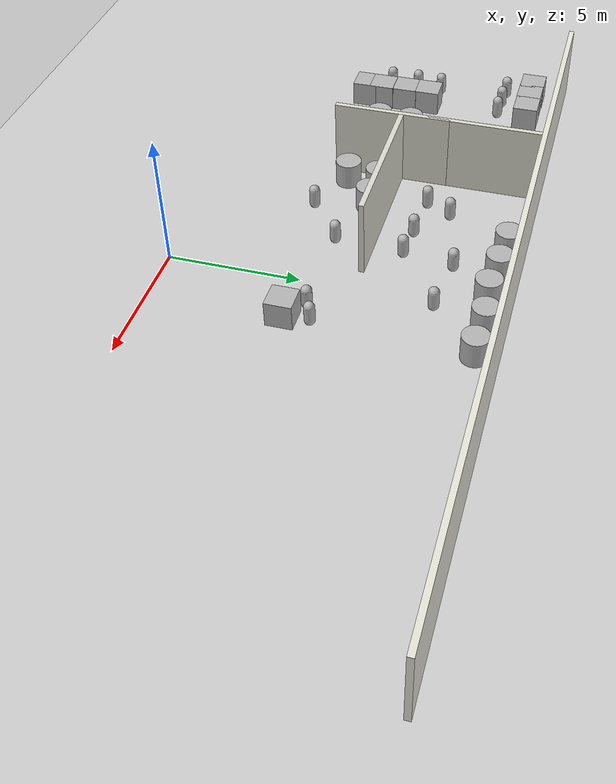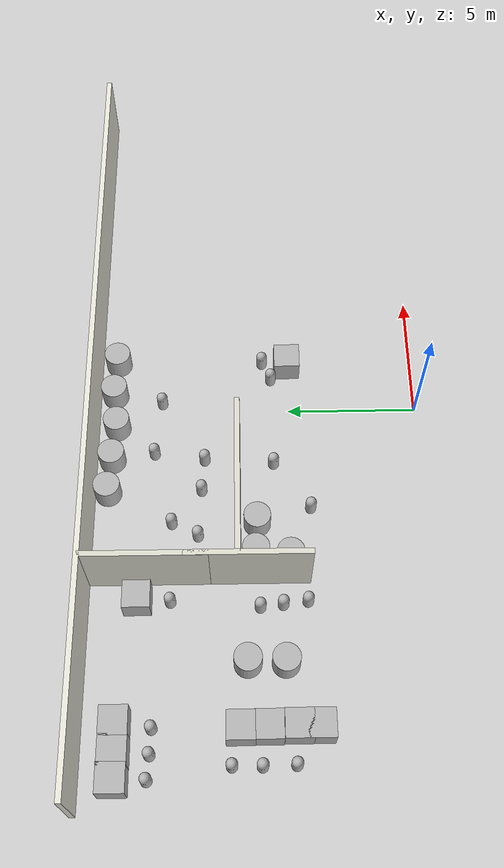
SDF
<sdf version="1.10">
 <world name="default">
  <model name="ground_plane">
   <static>true</static>
   <link name="link">
    <collision name="collision">
     <geometry><plane><normal>0 0 1</normal><size>100 100</size></plane></geometry>
    </collision>
    <visual name="visual">
     <geometry><plane><normal>0 0 1</normal><size>100 100</size></plane></geometry>
     <material>
      <ambient>0.800000012 0.800000012 0.800000012 1</ambient>
      <diffuse>0.800000012 0.800000012 0.800000012 1</diffuse>
      <specular>0.100000001 0.100000001 0.100000001 1</specular>
     </material>
    </visual>
    <inertial>
     <mass>1</mass>
     <inertia><ixx>1</ixx><ixy>0</ixy><ixz>0</ixz><iyy>1</iyy><iyz>0</iyz><izz>1</izz></inertia>
    </inertial>
   </link>
  </model>
  <model name="north_wall">
   <static>true</static>
   <pose>0 12.5 1.5 0 0 0</pose>
   <link name="link">
    <collision name="collision"><geometry><box><size>30 0.20000000000000001 3</size></box></geometry></collision>
    <visual name="visual">
     <geometry><box><size>30 0.20000000000000001 3</size></box></geometry>
     <material>
      <ambient>0.899999976 0.899999976 0.850000024 1</ambient>
      <diffuse>0.899999976 0.899999976 0.850000024 1</diffuse>
     </material>
    </visual>
    <inertial>
     <mass>1</mass>
     <inertia><ixx>1</ixx><ixy>0</ixy><ixz>0</ixz><iyy>1</iyy><iyz>0</iyz><izz>1</izz></inertia>
    </inertial>
   </link>
  </model>
  <model name="v_wall_m7_n2">
   <static>true</static>
   <pose>-7 10.25 1.5 0 0 0</pose>
   <link name="link">
    <collision name="collision"><geometry><box><size>0.20000000000000001 4.5 3</size></box></geometry></collision>
    <visual name="visual">
     <geometry><box><size>0.20000000000000001 4.5 3</size></box></geometry>
     <material>
      <ambient>0.850000024 0.850000024 0.800000012 1</ambient>
      <diffuse>0.850000024 0.850000024 0.800000012 1</diffuse>
     </material>
    </visual>
    <inertial>
     <mass>1</mass>
     <inertia><ixx>1</ixx><ixy>0</ixy><ixz>0</ixz><iyy>1</iyy><iyz>0</iyz><izz>1</izz></inertia>
    </inertial>
   </link>
  </model>
  <model name="h_wall_p7_seg1">
   <static>true</static>
   <pose>-4 7 1.5 0 0 0</pose>
   <link name="link">
    <collision name="collision"><geometry><box><size>6 0.20000000000000001 3</size></box></geometry></collision>
    <visual name="visual">
     <geometry><box><size>6 0.20000000000000001 3</size></box></geometry>
     <material>
      <ambient>0.850000024 0.850000024 0.800000012 1</ambient>
      <diffuse>0.850000024 0.850000024 0.800000012 1</diffuse>
     </material>
    </visual>
    <inertial>
     <mass>1</mass>
     <inertia><ixx>1</ixx><ixy>0</ixy><ixz>0</ixz><iyy>1</iyy><iyz>0</iyz><izz>1</izz></inertia>
    </inertial>
   </link>
  </model>
  <model name="v_wall_m7_n1_1">
   <static>true</static>
   <pose>-6.9964118067866385 6.624255076067092 1.5 0 0 0</pose>
   <link name="link">
    <collision name="collision"><geometry><box><size>0.20000000000000001 4.5 3</size></box></geometry></collision>
    <visual name="visual">
     <geometry><box><size>0.20000000000000001 4.5 3</size></box></geometry>
     <material>
      <ambient>0.850000024 0.850000024 0.800000012 1</ambient>
      <diffuse>0.850000024 0.850000024 0.800000012 1</diffuse>
     </material>
    </visual>
    <inertial>
     <mass>1</mass>
     <inertia><ixx>1</ixx><ixy>0</ixy><ixz>0</ixz><iyy>1</iyy><iyz>0</iyz><izz>1</izz></inertia>
    </inertial>
   </link>
  </model>
  <model name="box_5">
   <static>true</static>
   <pose>-13.920407534209415 11.225791648540341 0.5 0 0 0</pose>
   <link name="box_link">
    <inertial>
     <inertia><ixx>0.16666</ixx><ixy>0</ixy><ixz>0</ixz><iyy>0.16666</iyy><iyz>0</iyz><izz>0.16666</izz></inertia>
     <mass>1</mass>
    </inertial>
    <collision name="box_collision"><geometry><box><size>1 1 1</size></box></geometry></collision>
    <visual name="box_visual">
     <geometry><box><size>1 1 1</size></box></geometry>
     <material>
      <ambient>0.300000012 0.300000012 0.300000012 1</ambient>
      <diffuse>0.699999988 0.699999988 0.699999988 1</diffuse>
      <specular>1 1 1 1</specular>
     </material>
    </visual>
   </link>
   <static>false</static>
  </model>
  <model name="box_3_3">
   <static>true</static>
   <pose>-13.028856811321434 11.213962207562767 0.5 0 0 0</pose>
   <link name="box_link">
    <inertial>
     <inertia><ixx>0.16666</ixx><ixy>0</ixy><ixz>0</ixz><iyy>0.16666</iyy><iyz>0</iyz><izz>0.16666</izz></inertia>
     <mass>1</mass>
    </inertial>
    <collision name="box_collision"><geometry><box><size>1 1 1</size></box></geometry></collision>
    <visual name="box_visual">
     <geometry><box><size>1 1 1</size></box></geometry>
     <material>
      <ambient>0.300000012 0.300000012 0.300000012 1</ambient>
      <diffuse>0.699999988 0.699999988 0.699999988 1</diffuse>
      <specular>1 1 1 1</specular>
     </material>
    </visual>
   </link>
   <static>false</static>
  </model>
  <model name="box_3_4">
   <static>true</static>
   <pose>-12.087991972096594 11.219910795643306 0.5 0 0 0</pose>
   <link name="box_link">
    <inertial>
     <inertia><ixx>0.16666</ixx><ixy>0</ixy><ixz>0</ixz><iyy>0.16666</iyy><iyz>0</iyz><izz>0.16666</izz></inertia>
     <mass>1</mass>
    </inertial>
    <collision name="box_collision"><geometry><box><size>1 1 1</size></box></geometry></collision>
    <visual name="box_visual">
     <geometry><box><size>1 1 1</size></box></geometry>
     <material>
      <ambient>0.300000012 0.300000012 0.300000012 1</ambient>
      <diffuse>0.699999988 0.699999988 0.699999988 1</diffuse>
      <specular>1 1 1 1</specular>
     </material>
    </visual>
   </link>
   <static>false</static>
  </model>
  <model name="capsule_10">
   <static>true</static>
   <pose>-13.935018340891402 10.097251503520702 0.5 0 0 0</pose>
   <link name="capsule_link">
    <inertial>
     <inertia>
      <ixx>0.074153999999999998</ixx>
      <ixy>0</ixy>
      <ixz>0</ixz>
      <iyy>0.074153999999999998</iyy>
      <iyz>0</iyz>
      <izz>0.018769000000000001</izz>
     </inertia>
     <mass>1</mass>
    </inertial>
    <collision name="capsule_collision">
     <geometry>
      <capsule><radius>0.20000000000000001</radius><length>0.59999999999999998</length></capsule>
     </geometry>
    </collision>
    <visual name="capsule_visual">
     <geometry>
      <capsule><radius>0.20000000000000001</radius><length>0.59999999999999998</length></capsule>
     </geometry>
     <material>
      <ambient>0.300000012 0.300000012 0.300000012 1</ambient>
      <diffuse>0.699999988 0.699999988 0.699999988 1</diffuse>
      <specular>1 1 1 1</specular>
     </material>
    </visual>
   </link>
   <static>false</static>
  </model>
  <model name="capsule_11">
   <static>true</static>
   <pose>-13.119221214522979 10.023039743192648 0.5 0 0 0</pose>
   <link name="capsule_link">
    <inertial>
     <inertia>
      <ixx>0.074153999999999998</ixx>
      <ixy>0</ixy>
      <ixz>0</ixz>
      <iyy>0.074153999999999998</iyy>
      <iyz>0</iyz>
      <izz>0.018769000000000001</izz>
     </inertia>
     <mass>1</mass>
    </inertial>
    <collision name="capsule_collision">
     <geometry>
      <capsule><radius>0.20000000000000001</radius><length>0.59999999999999998</length></capsule>
     </geometry>
    </collision>
    <visual name="capsule_visual">
     <geometry>
      <capsule><radius>0.20000000000000001</radius><length>0.59999999999999998</length></capsule>
     </geometry>
     <material>
      <ambient>0.300000012 0.300000012 0.300000012 1</ambient>
      <diffuse>0.699999988 0.699999988 0.699999988 1</diffuse>
      <specular>1 1 1 1</specular>
     </material>
    </visual>
   </link>
   <static>false</static>
  </model>
  <model name="capsule_12">
   <static>true</static>
   <pose>-12.262949525757783 9.9820059924370597 0.5 0 0 0</pose>
   <link name="capsule_link">
    <inertial>
     <inertia>
      <ixx>0.074153999999999998</ixx>
      <ixy>0</ixy>
      <ixz>0</ixz>
      <iyy>0.074153999999999998</iyy>
      <iyz>0</iyz>
      <izz>0.018769000000000001</izz>
     </inertia>
     <mass>1</mass>
    </inertial>
    <collision name="capsule_collision">
     <geometry>
      <capsule><radius>0.20000000000000001</radius><length>0.59999999999999998</length></capsule>
     </geometry>
    </collision>
    <visual name="capsule_visual">
     <geometry>
      <capsule><radius>0.20000000000000001</radius><length>0.59999999999999998</length></capsule>
     </geometry>
     <material>
      <ambient>0.300000012 0.300000012 0.300000012 1</ambient>
      <diffuse>0.699999988 0.699999988 0.699999988 1</diffuse>
      <specular>1 1 1 1</specular>
     </material>
    </visual>
   </link>
   <static>false</static>
  </model>
  <model name="box_6">
   <static>true</static>
   <pose>-7.7401459845808294 10.622118878185075 0.5 0 0 0</pose>
   <link name="box_link">
    <inertial>
     <inertia><ixx>0.16666</ixx><ixy>0</ixy><ixz>0</ixz><iyy>0.16666</iyy><iyz>0</iyz><izz>0.16666</izz></inertia>
     <mass>1</mass>
    </inertial>
    <collision name="box_collision"><geometry><box><size>1 1 1</size></box></geometry></collision>
    <visual name="box_visual">
     <geometry><box><size>1 1 1</size></box></geometry>
     <material>
      <ambient>0.300000012 0.300000012 0.300000012 1</ambient>
      <diffuse>0.699999988 0.699999988 0.699999988 1</diffuse>
      <specular>1 1 1 1</specular>
     </material>
    </visual>
   </link>
   <static>false</static>
  </model>
  <model name="capsule_13">
   <static>true</static>
   <pose>-7.8480170268126166 9.4386615842912711 0.5 0 0 0</pose>
   <link name="capsule_link">
    <inertial>
     <inertia>
      <ixx>0.074153999999999998</ixx>
      <ixy>0</ixy>
      <ixz>0</ixz>
      <iyy>0.074153999999999998</iyy>
      <iyz>0</iyz>
      <izz>0.018769000000000001</izz>
     </inertia>
     <mass>1</mass>
    </inertial>
    <collision name="capsule_collision">
     <geometry>
      <capsule><radius>0.20000000000000001</radius><length>0.59999999999999998</length></capsule>
     </geometry>
    </collision>
    <visual name="capsule_visual">
     <geometry>
      <capsule><radius>0.20000000000000001</radius><length>0.59999999999999998</length></capsule>
     </geometry>
     <material>
      <ambient>0.300000012 0.300000012 0.300000012 1</ambient>
      <diffuse>0.699999988 0.699999988 0.699999988 1</diffuse>
      <specular>1 1 1 1</specular>
     </material>
    </visual>
   </link>
   <static>false</static>
  </model>
  <model name="box_8">
   <static>true</static>
   <pose>-12.265241237122602 4.9849532051126628 0.5 0 0 0</pose>
   <link name="box_link">
    <inertial>
     <inertia><ixx>0.16666</ixx><ixy>0</ixy><ixz>0</ixz><iyy>0.16666</iyy><iyz>0</iyz><izz>0.16666</izz></inertia>
     <mass>1</mass>
    </inertial>
    <collision name="box_collision"><geometry><box><size>1 1 1</size></box></geometry></collision>
    <visual name="box_visual">
     <geometry><box><size>1 1 1</size></box></geometry>
     <material>
      <ambient>0.300000012 0.300000012 0.300000012 1</ambient>
      <diffuse>0.699999988 0.699999988 0.699999988 1</diffuse>
      <specular>1 1 1 1</specular>
     </material>
    </visual>
   </link>
   <static>false</static>
  </model>
  <model name="box_9">
   <static>true</static>
   <pose>-12.28743931177155 5.9949288039292803 0.5 0 0 0</pose>
   <link name="box_link">
    <inertial>
     <inertia><ixx>0.16666</ixx><ixy>0</ixy><ixz>0</ixz><iyy>0.16666</iyy><iyz>0</iyz><izz>0.16666</izz></inertia>
     <mass>1</mass>
    </inertial>
    <collision name="box_collision"><geometry><box><size>1 1 1</size></box></geometry></collision>
    <visual name="box_visual">
     <geometry><box><size>1 1 1</size></box></geometry>
     <material>
      <ambient>0.300000012 0.300000012 0.300000012 1</ambient>
      <diffuse>0.699999988 0.699999988 0.699999988 1</diffuse>
      <specular>1 1 1 1</specular>
     </material>
    </visual>
   </link>
   <static>false</static>
  </model>
  <model name="box_10">
   <static>true</static>
   <pose>-12.301193252397621 6.9635277249526712 0.5 0 0 0</pose>
   <link name="box_link">
    <inertial>
     <inertia><ixx>0.16666</ixx><ixy>0</ixy><ixz>0</ixz><iyy>0.16666</iyy><iyz>0</iyz><izz>0.16666</izz></inertia>
     <mass>1</mass>
    </inertial>
    <collision name="box_collision"><geometry><box><size>1 1 1</size></box></geometry></collision>
    <visual name="box_visual">
     <geometry><box><size>1 1 1</size></box></geometry>
     <material>
      <ambient>0.300000012 0.300000012 0.300000012 1</ambient>
      <diffuse>0.699999988 0.699999988 0.699999988 1</diffuse>
      <specular>1 1 1 1</specular>
     </material>
    </visual>
   </link>
   <static>false</static>
  </model>
  <model name="box_11">
   <static>true</static>
   <pose>-12.262672191703292 4.2509902170944187 0.5 0 0 0</pose>
   <link name="box_link">
    <inertial>
     <inertia><ixx>0.16666</ixx><ixy>0</ixy><ixz>0</ixz><iyy>0.16666</iyy><iyz>0</iyz><izz>0.16666</izz></inertia>
     <mass>1</mass>
    </inertial>
    <collision name="box_collision"><geometry><box><size>1 1 1</size></box></geometry></collision>
    <visual name="box_visual">
     <geometry><box><size>1 1 1</size></box></geometry>
     <material>
      <ambient>0.300000012 0.300000012 0.300000012 1</ambient>
      <diffuse>0.699999988 0.699999988 0.699999988 1</diffuse>
      <specular>1 1 1 1</specular>
     </material>
    </visual>
   </link>
   <static>false</static>
  </model>
  <model name="capsule_14">
   <static>true</static>
   <pose>-13.516215259335066 7.2634368182305202 0.5 0 0 0</pose>
   <link name="capsule_link">
    <inertial>
     <inertia>
      <ixx>0.074153999999999998</ixx>
      <ixy>0</ixy>
      <ixz>0</ixz>
      <iyy>0.074153999999999998</iyy>
      <iyz>0</iyz>
      <izz>0.018769000000000001</izz>
     </inertia>
     <mass>1</mass>
    </inertial>
    <collision name="capsule_collision">
     <geometry>
      <capsule><radius>0.20000000000000001</radius><length>0.59999999999999998</length></capsule>
     </geometry>
    </collision>
    <visual name="capsule_visual">
     <geometry>
      <capsule><radius>0.20000000000000001</radius><length>0.59999999999999998</length></capsule>
     </geometry>
     <material>
      <ambient>0.300000012 0.300000012 0.300000012 1</ambient>
      <diffuse>0.699999988 0.699999988 0.699999988 1</diffuse>
      <specular>1 1 1 1</specular>
     </material>
    </visual>
   </link>
   <static>false</static>
  </model>
  <model name="capsule_15">
   <static>true</static>
   <pose>-13.52826616507129 6.236439201064508 0.5 0 0 0</pose>
   <link name="capsule_link">
    <inertial>
     <inertia>
      <ixx>0.074153999999999998</ixx>
      <ixy>0</ixy>
      <ixz>0</ixz>
      <iyy>0.074153999999999998</iyy>
      <iyz>0</iyz>
      <izz>0.018769000000000001</izz>
     </inertia>
     <mass>1</mass>
    </inertial>
    <collision name="capsule_collision">
     <geometry>
      <capsule><radius>0.20000000000000001</radius><length>0.59999999999999998</length></capsule>
     </geometry>
    </collision>
    <visual name="capsule_visual">
     <geometry>
      <capsule><radius>0.20000000000000001</radius><length>0.59999999999999998</length></capsule>
     </geometry>
     <material>
      <ambient>0.300000012 0.300000012 0.300000012 1</ambient>
      <diffuse>0.699999988 0.699999988 0.699999988 1</diffuse>
      <specular>1 1 1 1</specular>
     </material>
    </visual>
   </link>
   <static>false</static>
  </model>
  <model name="capsule_16">
   <static>true</static>
   <pose>-13.496497570099336 5.0920014076874924 0.5 0 0 0</pose>
   <link name="capsule_link">
    <inertial>
     <inertia>
      <ixx>0.074153999999999998</ixx>
      <ixy>0</ixy>
      <ixz>0</ixz>
      <iyy>0.074153999999999998</iyy>
      <iyz>0</iyz>
      <izz>0.018769000000000001</izz>
     </inertia>
     <mass>1</mass>
    </inertial>
    <collision name="capsule_collision">
     <geometry>
      <capsule><radius>0.20000000000000001</radius><length>0.59999999999999998</length></capsule>
     </geometry>
    </collision>
    <visual name="capsule_visual">
     <geometry>
      <capsule><radius>0.20000000000000001</radius><length>0.59999999999999998</length></capsule>
     </geometry>
     <material>
      <ambient>0.300000012 0.300000012 0.300000012 1</ambient>
      <diffuse>0.699999988 0.699999988 0.699999988 1</diffuse>
      <specular>1 1 1 1</specular>
     </material>
    </visual>
   </link>
   <static>false</static>
  </model>
  <model name="capsule_18">
   <static>true</static>
   <pose>-8.0737088148294252 6.2201001171452965 0.5 0 0 0</pose>
   <link name="capsule_link">
    <inertial>
     <inertia>
      <ixx>0.074153999999999998</ixx>
      <ixy>0</ixy>
      <ixz>0</ixz>
      <iyy>0.074153999999999998</iyy>
      <iyz>0</iyz>
      <izz>0.018769000000000001</izz>
     </inertia>
     <mass>1</mass>
    </inertial>
    <collision name="capsule_collision">
     <geometry>
      <capsule><radius>0.20000000000000001</radius><length>0.59999999999999998</length></capsule>
     </geometry>
    </collision>
    <visual name="capsule_visual">
     <geometry>
      <capsule><radius>0.20000000000000001</radius><length>0.59999999999999998</length></capsule>
     </geometry>
     <material>
      <ambient>0.300000012 0.300000012 0.300000012 1</ambient>
      <diffuse>0.699999988 0.699999988 0.699999988 1</diffuse>
      <specular>1 1 1 1</specular>
     </material>
    </visual>
   </link>
   <static>false</static>
  </model>
  <model name="capsule_19">
   <static>true</static>
   <pose>-7.9826820240273832 5.3978111407423075 0.5 0 0 0</pose>
   <link name="capsule_link">
    <inertial>
     <inertia>
      <ixx>0.074153999999999998</ixx>
      <ixy>0</ixy>
      <ixz>0</ixz>
      <iyy>0.074153999999999998</iyy>
      <iyz>0</iyz>
      <izz>0.018769000000000001</izz>
     </inertia>
     <mass>1</mass>
    </inertial>
    <collision name="capsule_collision">
     <geometry>
      <capsule><radius>0.20000000000000001</radius><length>0.59999999999999998</length></capsule>
     </geometry>
    </collision>
    <visual name="capsule_visual">
     <geometry>
      <capsule><radius>0.20000000000000001</radius><length>0.59999999999999998</length></capsule>
     </geometry>
     <material>
      <ambient>0.300000012 0.300000012 0.300000012 1</ambient>
      <diffuse>0.699999988 0.699999988 0.699999988 1</diffuse>
      <specular>1 1 1 1</specular>
     </material>
    </visual>
   </link>
   <static>false</static>
  </model>
  <model name="capsule_20">
   <static>true</static>
   <pose>-7.8806901541733572 4.5110249477078135 0.5 0 0 0</pose>
   <link name="capsule_link">
    <inertial>
     <inertia>
      <ixx>0.074153999999999998</ixx>
      <ixy>0</ixy>
      <ixz>0</ixz>
      <iyy>0.074153999999999998</iyy>
      <iyz>0</iyz>
      <izz>0.018769000000000001</izz>
     </inertia>
     <mass>1</mass>
    </inertial>
    <collision name="capsule_collision">
     <geometry>
      <capsule><radius>0.20000000000000001</radius><length>0.59999999999999998</length></capsule>
     </geometry>
    </collision>
    <visual name="capsule_visual">
     <geometry>
      <capsule><radius>0.20000000000000001</radius><length>0.59999999999999998</length></capsule>
     </geometry>
     <material>
      <ambient>0.300000012 0.300000012 0.300000012 1</ambient>
      <diffuse>0.699999988 0.699999988 0.699999988 1</diffuse>
      <specular>1 1 1 1</specular>
     </material>
    </visual>
   </link>
   <static>false</static>
  </model>
  <model name="cylinder_1">
   <static>true</static>
   <pose>-10.055410278562833 5.3531456058967848 0.5 0 0 0</pose>
   <link name="cylinder_link">
    <inertial>
     <inertia>
      <ixx>0.14580000000000001</ixx>
      <ixy>0</ixy>
      <ixz>0</ixz>
      <iyy>0.14580000000000001</iyy>
      <iyz>0</iyz>
      <izz>0.125</izz>
     </inertia>
     <mass>1</mass>
    </inertial>
    <collision name="cylinder_collision">
     <geometry><cylinder><radius>0.5</radius><length>1</length></cylinder></geometry>
    </collision>
    <visual name="cylinder_visual">
     <geometry><cylinder><radius>0.5</radius><length>1</length></cylinder></geometry>
     <material>
      <ambient>0.300000012 0.300000012 0.300000012 1</ambient>
      <diffuse>0.699999988 0.699999988 0.699999988 1</diffuse>
      <specular>1 1 1 1</specular>
     </material>
    </visual>
   </link>
   <static>false</static>
  </model>
  <model name="cylinder_2">
   <static>true</static>
   <pose>-10.03786711176434 6.6895479144188297 0.5 0 0 0</pose>
   <link name="cylinder_link">
    <inertial>
     <inertia>
      <ixx>0.14580000000000001</ixx>
      <ixy>0</ixy>
      <ixz>0</ixz>
      <iyy>0.14580000000000001</iyy>
      <iyz>0</iyz>
      <izz>0.125</izz>
     </inertia>
     <mass>1</mass>
    </inertial>
    <collision name="cylinder_collision">
     <geometry><cylinder><radius>0.5</radius><length>1</length></cylinder></geometry>
    </collision>
    <visual name="cylinder_visual">
     <geometry><cylinder><radius>0.5</radius><length>1</length></cylinder></geometry>
     <material>
      <ambient>0.300000012 0.300000012 0.300000012 1</ambient>
      <diffuse>0.699999988 0.699999988 0.699999988 1</diffuse>
      <specular>1 1 1 1</specular>
     </material>
    </visual>
   </link>
   <static>false</static>
  </model>
  <model name="cylinder_26">
   <static>true</static>
   <pose>2.198581817001914 11.744484584267926 0.5 0 0 0</pose>
   <link name="cylinder_link">
    <inertial>
     <inertia>
      <ixx>0.14580000000000001</ixx>
      <ixy>0</ixy>
      <ixz>0</ixz>
      <iyy>0.14580000000000001</iyy>
      <iyz>0</iyz>
      <izz>0.125</izz>
     </inertia>
     <mass>1</mass>
    </inertial>
    <collision name="cylinder_collision">
     <geometry><cylinder><radius>0.5</radius><length>1</length></cylinder></geometry>
    </collision>
    <visual name="cylinder_visual">
     <geometry><cylinder><radius>0.5</radius><length>1</length></cylinder></geometry>
     <material>
      <ambient>0.300000012 0.300000012 0.300000012 1</ambient>
      <diffuse>0.699999988 0.699999988 0.699999988 1</diffuse>
      <specular>1 1 1 1</specular>
     </material>
    </visual>
   </link>
   <static>false</static>
  </model>
  <model name="cylinder_27">
   <static>true</static>
   <pose>0.71733170815804126 11.814700322363967 0.5 0 0 0</pose>
   <link name="cylinder_link">
    <inertial>
     <inertia>
      <ixx>0.14580000000000001</ixx>
      <ixy>0</ixy>
      <ixz>0</ixz>
      <iyy>0.14580000000000001</iyy>
      <iyz>0</iyz>
      <izz>0.125</izz>
     </inertia>
     <mass>1</mass>
    </inertial>
    <collision name="cylinder_collision">
     <geometry><cylinder><radius>0.5</radius><length>1</length></cylinder></geometry>
    </collision>
    <visual name="cylinder_visual">
     <geometry><cylinder><radius>0.5</radius><length>1</length></cylinder></geometry>
     <material>
      <ambient>0.300000012 0.300000012 0.300000012 1</ambient>
      <diffuse>0.699999988 0.699999988 0.699999988 1</diffuse>
      <specular>1 1 1 1</specular>
     </material>
    </visual>
   </link>
   <static>false</static>
  </model>
  <model name="cylinder_28">
   <static>true</static>
   <pose>-0.71394109380141835 11.667452474504277 0.5 0 0 0</pose>
   <link name="cylinder_link">
    <inertial>
     <inertia>
      <ixx>0.14580000000000001</ixx>
      <ixy>0</ixy>
      <ixz>0</ixz>
      <iyy>0.14580000000000001</iyy>
      <iyz>0</iyz>
      <izz>0.125</izz>
     </inertia>
     <mass>1</mass>
    </inertial>
    <collision name="cylinder_collision">
     <geometry><cylinder><radius>0.5</radius><length>1</length></cylinder></geometry>
    </collision>
    <visual name="cylinder_visual">
     <geometry><cylinder><radius>0.5</radius><length>1</length></cylinder></geometry>
     <material>
      <ambient>0.300000012 0.300000012 0.300000012 1</ambient>
      <diffuse>0.699999988 0.699999988 0.699999988 1</diffuse>
      <specular>1 1 1 1</specular>
     </material>
    </visual>
   </link>
   <static>false</static>
  </model>
  <model name="cylinder_29">
   <static>true</static>
   <pose>-2.1184155827207976 11.797566446842533 0.5 0 0 0</pose>
   <link name="cylinder_link">
    <inertial>
     <inertia>
      <ixx>0.14580000000000001</ixx>
      <ixy>0</ixy>
      <ixz>0</ixz>
      <iyy>0.14580000000000001</iyy>
      <iyz>0</iyz>
      <izz>0.125</izz>
     </inertia>
     <mass>1</mass>
    </inertial>
    <collision name="cylinder_collision">
     <geometry><cylinder><radius>0.5</radius><length>1</length></cylinder></geometry>
    </collision>
    <visual name="cylinder_visual">
     <geometry><cylinder><radius>0.5</radius><length>1</length></cylinder></geometry>
     <material>
      <ambient>0.300000012 0.300000012 0.300000012 1</ambient>
      <diffuse>0.699999988 0.699999988 0.699999988 1</diffuse>
      <specular>1 1 1 1</specular>
     </material>
    </visual>
   </link>
   <static>false</static>
  </model>
  <model name="cylinder_30">
   <static>true</static>
   <pose>-3.4854735415239979 11.898577262646603 0.5 0 0 0</pose>
   <link name="cylinder_link">
    <inertial>
     <inertia>
      <ixx>0.14580000000000001</ixx>
      <ixy>0</ixy>
      <ixz>0</ixz>
      <iyy>0.14580000000000001</iyy>
      <iyz>0</iyz>
      <izz>0.125</izz>
     </inertia>
     <mass>1</mass>
    </inertial>
    <collision name="cylinder_collision">
     <geometry><cylinder><radius>0.5</radius><length>1</length></cylinder></geometry>
    </collision>
    <visual name="cylinder_visual">
     <geometry><cylinder><radius>0.5</radius><length>1</length></cylinder></geometry>
     <material>
      <ambient>0.300000012 0.300000012 0.300000012 1</ambient>
      <diffuse>0.699999988 0.699999988 0.699999988 1</diffuse>
      <specular>1 1 1 1</specular>
     </material>
    </visual>
   </link>
   <static>false</static>
  </model>
  <model name="capsule_43">
   <static>true</static>
   <pose>-2.2285902249448704 8.250900023258076 0.5 0 0 0</pose>
   <link name="capsule_link">
    <inertial>
     <inertia>
      <ixx>0.074153999999999998</ixx>
      <ixy>0</ixy>
      <ixz>0</ixz>
      <iyy>0.074153999999999998</iyy>
      <iyz>0</iyz>
      <izz>0.018769000000000001</izz>
     </inertia>
     <mass>1</mass>
    </inertial>
    <collision name="capsule_collision">
     <geometry>
      <capsule><radius>0.20000000000000001</radius><length>0.59999999999999998</length></capsule>
     </geometry>
    </collision>
    <visual name="capsule_visual">
     <geometry>
      <capsule><radius>0.20000000000000001</radius><length>0.59999999999999998</length></capsule>
     </geometry>
     <material>
      <ambient>0.300000012 0.300000012 0.300000012 1</ambient>
      <diffuse>0.699999988 0.699999988 0.699999988 1</diffuse>
      <specular>1 1 1 1</specular>
     </material>
    </visual>
   </link>
   <static>false</static>
  </model>
  <model name="capsule_44">
   <static>true</static>
   <pose>-3.4924209740122962 8.3565297906876133 0.5 0 0 0</pose>
   <link name="capsule_link">
    <inertial>
     <inertia>
      <ixx>0.074153999999999998</ixx>
      <ixy>0</ixy>
      <ixz>0</ixz>
      <iyy>0.074153999999999998</iyy>
      <iyz>0</iyz>
      <izz>0.018769000000000001</izz>
     </inertia>
     <mass>1</mass>
    </inertial>
    <collision name="capsule_collision">
     <geometry>
      <capsule><radius>0.20000000000000001</radius><length>0.59999999999999998</length></capsule>
     </geometry>
    </collision>
    <visual name="capsule_visual">
     <geometry>
      <capsule><radius>0.20000000000000001</radius><length>0.59999999999999998</length></capsule>
     </geometry>
     <material>
      <ambient>0.300000012 0.300000012 0.300000012 1</ambient>
      <diffuse>0.699999988 0.699999988 0.699999988 1</diffuse>
      <specular>1 1 1 1</specular>
     </material>
    </visual>
   </link>
   <static>false</static>
  </model>
  <model name="capsule_45">
   <static>true</static>
   <pose>-4.8244285137370273 9.4558279591743606 0.5 0 0 0</pose>
   <link name="capsule_link">
    <inertial>
     <inertia>
      <ixx>0.074153999999999998</ixx>
      <ixy>0</ixy>
      <ixz>0</ixz>
      <iyy>0.074153999999999998</iyy>
      <iyz>0</iyz>
      <izz>0.018769000000000001</izz>
     </inertia>
     <mass>1</mass>
    </inertial>
    <collision name="capsule_collision">
     <geometry>
      <capsule><radius>0.20000000000000001</radius><length>0.59999999999999998</length></capsule>
     </geometry>
    </collision>
    <visual name="capsule_visual">
     <geometry>
      <capsule><radius>0.20000000000000001</radius><length>0.59999999999999998</length></capsule>
     </geometry>
     <material>
      <ambient>0.300000012 0.300000012 0.300000012 1</ambient>
      <diffuse>0.699999988 0.699999988 0.699999988 1</diffuse>
      <specular>1 1 1 1</specular>
     </material>
    </visual>
   </link>
   <static>false</static>
  </model>
  <model name="capsule_46">
   <static>true</static>
   <pose>0.26466104742871632 9.9306658607036518 0.5 0 0 0</pose>
   <link name="capsule_link">
    <inertial>
     <inertia>
      <ixx>0.074153999999999998</ixx>
      <ixy>0</ixy>
      <ixz>0</ixz>
      <iyy>0.074153999999999998</iyy>
      <iyz>0</iyz>
      <izz>0.018769000000000001</izz>
     </inertia>
     <mass>1</mass>
    </inertial>
    <collision name="capsule_collision">
     <geometry>
      <capsule><radius>0.20000000000000001</radius><length>0.59999999999999998</length></capsule>
     </geometry>
    </collision>
    <visual name="capsule_visual">
     <geometry>
      <capsule><radius>0.20000000000000001</radius><length>0.59999999999999998</length></capsule>
     </geometry>
     <material>
      <ambient>0.300000012 0.300000012 0.300000012 1</ambient>
      <diffuse>0.699999988 0.699999988 0.699999988 1</diffuse>
      <specular>1 1 1 1</specular>
     </material>
    </visual>
   </link>
   <static>false</static>
  </model>
  <model name="capsule_48">
   <static>true</static>
   <pose>-5.3310524656305702 8.4774409077777939 0.5 0 0 0</pose>
   <link name="capsule_link">
    <inertial>
     <inertia>
      <ixx>0.074153999999999998</ixx>
      <ixy>0</ixy>
      <ixz>0</ixz>
      <iyy>0.074153999999999998</iyy>
      <iyz>0</iyz>
      <izz>0.018769000000000001</izz>
     </inertia>
     <mass>1</mass>
    </inertial>
    <collision name="capsule_collision">
     <geometry>
      <capsule><radius>0.20000000000000001</radius><length>0.59999999999999998</length></capsule>
     </geometry>
    </collision>
    <visual name="capsule_visual">
     <geometry>
      <capsule><radius>0.20000000000000001</radius><length>0.59999999999999998</length></capsule>
     </geometry>
     <material>
      <ambient>0.300000012 0.300000012 0.300000012 1</ambient>
      <diffuse>0.699999988 0.699999988 0.699999988 1</diffuse>
      <specular>1 1 1 1</specular>
     </material>
    </visual>
   </link>
   <static>false</static>
  </model>
  <model name="capsule_49">
   <static>true</static>
   <pose>-1.9421508101001104 10.17016413704752 0.5 0 0 0</pose>
   <link name="capsule_link">
    <inertial>
     <inertia>
      <ixx>0.074153999999999998</ixx>
      <ixy>0</ixy>
      <ixz>0</ixz>
      <iyy>0.074153999999999998</iyy>
      <iyz>0</iyz>
      <izz>0.018769000000000001</izz>
     </inertia>
     <mass>1</mass>
    </inertial>
    <collision name="capsule_collision">
     <geometry>
      <capsule><radius>0.20000000000000001</radius><length>0.59999999999999998</length></capsule>
     </geometry>
    </collision>
    <visual name="capsule_visual">
     <geometry>
      <capsule><radius>0.20000000000000001</radius><length>0.59999999999999998</length></capsule>
     </geometry>
     <material>
      <ambient>0.300000012 0.300000012 0.300000012 1</ambient>
      <diffuse>0.699999988 0.699999988 0.699999988 1</diffuse>
      <specular>1 1 1 1</specular>
     </material>
    </visual>
   </link>
   <static>false</static>
  </model>
  <model name="capsule_51">
   <static>true</static>
   <pose>1.3036221610044549 5.67102378780121 0.5 0 0 0</pose>
   <link name="capsule_link">
    <inertial>
     <inertia>
      <ixx>0.074153999999999998</ixx>
      <ixy>0</ixy>
      <ixz>0</ixz>
      <iyy>0.074153999999999998</iyy>
      <iyz>0</iyz>
      <izz>0.018769000000000001</izz>
     </inertia>
     <mass>1</mass>
    </inertial>
    <collision name="capsule_collision">
     <geometry>
      <capsule><radius>0.20000000000000001</radius><length>0.59999999999999998</length></capsule>
     </geometry>
    </collision>
    <visual name="capsule_visual">
     <geometry>
      <capsule><radius>0.20000000000000001</radius><length>0.59999999999999998</length></capsule>
     </geometry>
     <material>
      <ambient>0.300000012 0.300000012 0.300000012 1</ambient>
      <diffuse>0.699999988 0.699999988 0.699999988 1</diffuse>
      <specular>1 1 1 1</specular>
     </material>
    </visual>
   </link>
   <static>false</static>
  </model>
  <model name="capsule_52">
   <static>true</static>
   <pose>-2.402882065661843 5.6279034680853623 0.5 0 0 0</pose>
   <link name="capsule_link">
    <inertial>
     <inertia>
      <ixx>0.074153999999999998</ixx>
      <ixy>0</ixy>
      <ixz>0</ixz>
      <iyy>0.074153999999999998</iyy>
      <iyz>0</iyz>
      <izz>0.018769000000000001</izz>
     </inertia>
     <mass>1</mass>
    </inertial>
    <collision name="capsule_collision">
     <geometry>
      <capsule><radius>0.20000000000000001</radius><length>0.59999999999999998</length></capsule>
     </geometry>
    </collision>
    <visual name="capsule_visual">
     <geometry>
      <capsule><radius>0.20000000000000001</radius><length>0.59999999999999998</length></capsule>
     </geometry>
     <material>
      <ambient>0.300000012 0.300000012 0.300000012 1</ambient>
      <diffuse>0.699999988 0.699999988 0.699999988 1</diffuse>
      <specular>1 1 1 1</specular>
     </material>
    </visual>
   </link>
   <static>false</static>
  </model>
  <model name="cylinder_37">
   <static>true</static>
   <pose>-6.0203895357473192 6.3516793112052117 0.5 0 0 0</pose>
   <link name="cylinder_link">
    <inertial>
     <inertia>
      <ixx>0.14580000000000001</ixx>
      <ixy>0</ixy>
      <ixz>0</ixz>
      <iyy>0.14580000000000001</iyy>
      <iyz>0</iyz>
      <izz>0.125</izz>
     </inertia>
     <mass>1</mass>
    </inertial>
    <collision name="cylinder_collision">
     <geometry><cylinder><radius>0.5</radius><length>1</length></cylinder></geometry>
    </collision>
    <visual name="cylinder_visual">
     <geometry><cylinder><radius>0.5</radius><length>1</length></cylinder></geometry>
     <material>
      <ambient>0.300000012 0.300000012 0.300000012 1</ambient>
      <diffuse>0.699999988 0.699999988 0.699999988 1</diffuse>
      <specular>1 1 1 1</specular>
     </material>
    </visual>
   </link>
   <static>false</static>
  </model>
  <model name="cylinder_38">
   <static>true</static>
   <pose>-4.7884054003942627 6.2889356359547266 0.5 0 0 0</pose>
   <link name="cylinder_link">
    <inertial>
     <inertia>
      <ixx>0.14580000000000001</ixx>
      <ixy>0</ixy>
      <ixz>0</ixz>
      <iyy>0.14580000000000001</iyy>
      <iyz>0</iyz>
      <izz>0.125</izz>
     </inertia>
     <mass>1</mass>
    </inertial>
    <collision name="cylinder_collision">
     <geometry><cylinder><radius>0.5</radius><length>1</length></cylinder></geometry>
    </collision>
    <visual name="cylinder_visual">
     <geometry><cylinder><radius>0.5</radius><length>1</length></cylinder></geometry>
     <material>
      <ambient>0.300000012 0.300000012 0.300000012 1</ambient>
      <diffuse>0.699999988 0.699999988 0.699999988 1</diffuse>
      <specular>1 1 1 1</specular>
     </material>
    </visual>
   </link>
   <static>false</static>
  </model>
  <model name="cylinder_39">
   <static>true</static>
   <pose>-6.1991161806254809 5.0884025273978981 0.5 0 0 0</pose>
   <link name="cylinder_link">
    <inertial>
     <inertia>
      <ixx>0.14580000000000001</ixx>
      <ixy>0</ixy>
      <ixz>0</ixz>
      <iyy>0.14580000000000001</iyy>
      <iyz>0</iyz>
      <izz>0.125</izz>
     </inertia>
     <mass>1</mass>
    </inertial>
    <collision name="cylinder_collision">
     <geometry><cylinder><radius>0.5</radius><length>1</length></cylinder></geometry>
    </collision>
    <visual name="cylinder_visual">
     <geometry><cylinder><radius>0.5</radius><length>1</length></cylinder></geometry>
     <material>
      <ambient>0.300000012 0.300000012 0.300000012 1</ambient>
      <diffuse>0.699999988 0.699999988 0.699999988 1</diffuse>
      <specular>1 1 1 1</specular>
     </material>
    </visual>
   </link>
   <static>false</static>
  </model>
  <model name="capsule_53">
   <static>true</static>
   <pose>-4.2499421180046193 4.276983327814694 0.5 0 0 0</pose>
   <link name="capsule_link">
    <inertial>
     <inertia>
      <ixx>0.074153999999999998</ixx>
      <ixy>0</ixy>
      <ixz>0</ixz>
      <iyy>0.074153999999999998</iyy>
      <iyz>0</iyz>
      <izz>0.018769000000000001</izz>
     </inertia>
     <mass>1</mass>
    </inertial>
    <collision name="capsule_collision">
     <geometry>
      <capsule><radius>0.20000000000000001</radius><length>0.59999999999999998</length></capsule>
     </geometry>
    </collision>
    <visual name="capsule_visual">
     <geometry>
      <capsule><radius>0.20000000000000001</radius><length>0.59999999999999998</length></capsule>
     </geometry>
     <material>
      <ambient>0.300000012 0.300000012 0.300000012 1</ambient>
      <diffuse>0.699999988 0.699999988 0.699999988 1</diffuse>
      <specular>1 1 1 1</specular>
     </material>
    </visual>
   </link>
   <static>false</static>
  </model>
  <model name="box_36">
   <static>true</static>
   <pose>2.0192999839782715 5.019899845123291 0.5 0 0 0</pose>
   <link name="box_link">
    <inertial>
     <inertia><ixx>0.16666</ixx><ixy>0</ixy><ixz>0</ixz><iyy>0.16666</iyy><iyz>0</iyz><izz>0.16666</izz></inertia>
     <mass>1</mass>
    </inertial>
    <collision name="box_collision"><geometry><box><size>1 1 1</size></box></geometry></collision>
    <visual name="box_visual">
     <geometry><box><size>1 1 1</size></box></geometry>
     <material>
      <ambient>0.300000012 0.300000012 0.300000012 1</ambient>
      <diffuse>0.699999988 0.699999988 0.699999988 1</diffuse>
      <specular>1 1 1 1</specular>
     </material>
    </visual>
   </link>
   <static>false</static>
  </model>
  <model name="capsule_56">
   <static>true</static>
   <pose>2.0723691774843651 6.006694653698224 0.5 0 0 0</pose>
   <link name="capsule_link">
    <inertial>
     <inertia>
      <ixx>0.074153999999999998</ixx>
      <ixy>0</ixy>
      <ixz>0</ixz>
      <iyy>0.074153999999999998</iyy>
      <iyz>0</iyz>
      <izz>0.018769000000000001</izz>
     </inertia>
     <mass>1</mass>
    </inertial>
    <collision name="capsule_collision">
     <geometry>
      <capsule><radius>0.20000000000000001</radius><length>0.59999999999999998</length></capsule>
     </geometry>
    </collision>
    <visual name="capsule_visual">
     <geometry>
      <capsule><radius>0.20000000000000001</radius><length>0.59999999999999998</length></capsule>
     </geometry>
     <material>
      <ambient>0.300000012 0.300000012 0.300000012 1</ambient>
      <diffuse>0.699999988 0.699999988 0.699999988 1</diffuse>
      <specular>1 1 1 1</specular>
     </material>
    </visual>
   </link>
   <static>false</static>
  </model>
 </world>
</sdf>
